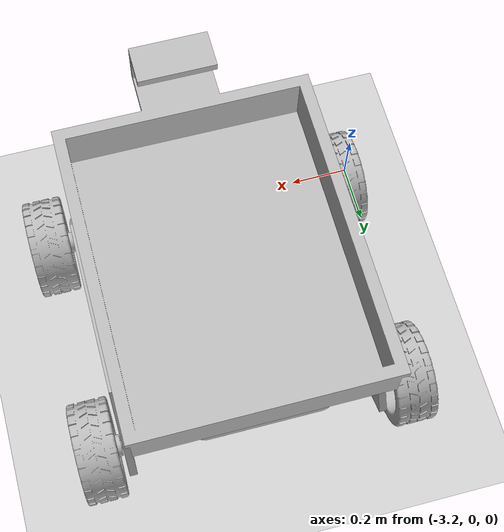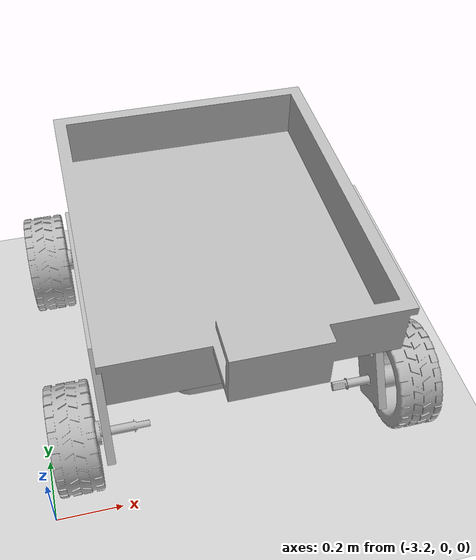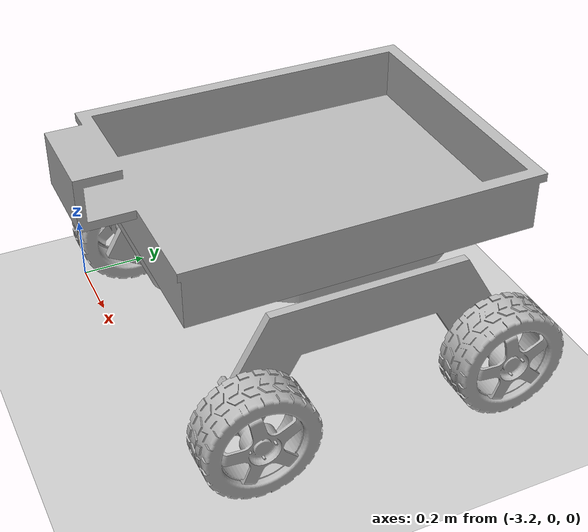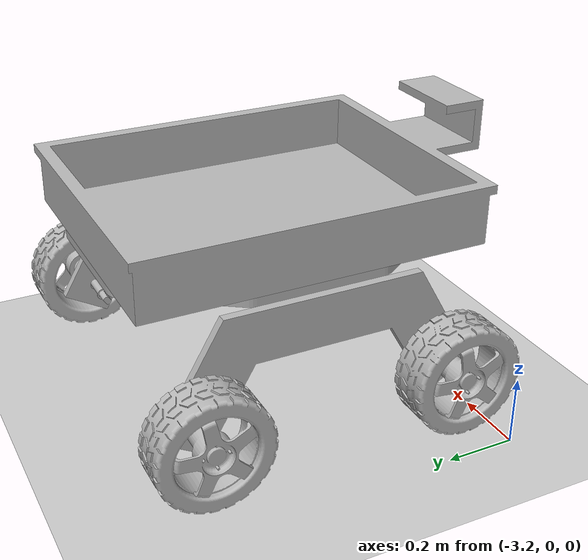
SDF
<sdf version="1.9">
 <world name="warehouse_world">
  <plugin filename="gz-sim-physics-system" name="gz::sim::systems::Physics"/>
  <plugin filename="gz-sim-user-commands-system" name="gz::sim::systems::UserCommands"/>
  <plugin filename="gz-sim-scene-broadcaster-system" name="gz::sim::systems::SceneBroadcaster"/>
  <plugin filename="gz-sim-contact-system" name="gz::sim::systems::Contact"/>
  <scene>
   <grid>false</grid>
   <origin_visual>false</origin_visual>
   <ambient>0.5 0.5 0.5 1</ambient>
   <background>0.5 0.7 1.0 1</background>
  </scene>
  <light name="warehouse_light" type="point">
   <pose>0 0 8 0 0 0</pose>
   <diffuse>0.7 0.7 0.7 1</diffuse>
   <specular>0.2 0.2 0.2 1</specular>
   <attenuation>
    <range>50</range>
    <constant>0.5</constant>
    <linear>0.01</linear>
    <quadratic>0.001</quadratic>
   </attenuation>
  </light>
  <model name="ground_plane">
   <static>true</static>
   <link name="link">
    <collision name="collision">
     <geometry><plane><normal>0 0 1</normal><size>100 100</size></plane></geometry>
    </collision>
    <visual name="visual"><geometry><plane><normal>0 0 1</normal><size>100 100</size></plane></geometry></visual>
   </link>
  </model>
  <include>
   <uri>file:///home/ishan/Documents/ros_mobile_robot/fusionSDF</uri>
   <pose>-3 0 0.5 0 0 0</pose>
  </include>
 </world>
</sdf>

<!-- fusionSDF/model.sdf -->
<sdf version="1.9">
  <model name="finalassembly_v3">

    <link name="base_link_1">
      <inertial>
        <pose>0.08000000000000008 0.09545598293362575 0.0068908634732035455 0.0 -0.0 0.0</pose>
        <mass>3.9409647200439992</mass>
        <inertia>
          <ixx>0.017709947701599185</ixx>
          <ixy>1.7694179454963432e-16</ixy>
          <ixz>-8.673617379884035e-19</ixz>
          <iyy>0.013743217946582138</iyy>
          <iyz>0.000759111480018366</iyz>
          <izz>0.0282437401639066</izz>
        </inertia>
      </inertial>

      <visual name="base_link_1__body1_visual">
        <geometry>
          <mesh>
            <scale>0.05 0.05 0.05</scale>
            <uri>meshes/base_link_1/body1_visual.obj</uri>
          </mesh>
        </geometry>
      </visual>

      <visual name="base_link_1__body2_visual">
        <geometry>
          <mesh>
            <scale>0.05 0.05 0.05</scale>
            <uri>meshes/base_link_1/body2_visual.obj</uri>
          </mesh>
        </geometry>
      </visual>

      <visual name="base_link_1__body3_visual">
        <geometry>
          <mesh>
            <scale>0.05 0.05 0.05</scale>
            <uri>meshes/base_link_1/body3_visual.obj</uri>
          </mesh>
        </geometry>
      </visual>

      <visual name="base_link_1__body4_visual">
        <geometry>
          <mesh>
            <scale>0.05 0.05 0.05</scale>
            <uri>meshes/base_link_1/body4_visual.obj</uri>
          </mesh>
        </geometry>
      </visual>

      <collision name="base_link_collision">
        <pose>0.40 0.40 0.075 0 0 0</pose>
        <geometry>
          <box>
            <size>0.80 1.20 0.40</size>
          </box>
        </geometry>
      </collision>
    </link>

    <link name="front_left_wheel_1">
      <inertial>
        <pose>0.18119913055959916 0.02650941058119064 -0.058006850665017165 0.0 -0.0 0.0</pose>
        <mass>0.23963195508574156</mass>
        <inertia>
          <ixx>0.00015999625746217466</ixx>
          <ixy>5.079204962437495e-10</ixy>
          <ixz>-4.011342529842976e-10</ixz>
          <iyy>0.00010144075867908435</iyy>
          <iyz>1.9240309589692653e-10</iyz>
          <izz>0.0001014408426342206</izz>
        </inertia>
      </inertial>

      <visual name="front_left_wheel_1__body1_visual">
        <geometry>
          <mesh>
            <scale>0.05 0.05 0.05</scale>
            <uri>meshes/front_left_wheel_1/body1_visual.obj</uri>
          </mesh>
        </geometry>
      </visual>

      <visual name="front_left_wheel_1__body2_visual">
        <geometry>
          <mesh>
            <scale>0.05 0.05 0.05</scale>
            <uri>meshes/front_left_wheel_1/body2_visual.obj</uri>
          </mesh>
        </geometry>
      </visual>

      <collision name="wheel_collision">
        <pose>0.9005 0.1325 -0.29 1.5708 0 1.5708</pose>
        <geometry>
          <cylinder>
            <radius>0.16</radius>
            <length>0.14</length>
          </cylinder>
        </geometry>
      </collision>
    </link>

    <link name="rear_left_wheel_1">
      <inertial>
        <pose>0.18119913055959913 0.17349016693742006 -0.05800685066501671 0.0 -0.0 0.0</pose>
        <mass>0.23963195508574073</mass>
        <inertia>
          <ixx>0.0001599965333883447</ixx>
          <ixy>2.5793205592206103e-10</ixy>
          <ixz>-4.0113425255061674e-10</ixz>
          <iyy>0.00010144075867908435</iyy>
          <iyz>2.7243130754778244e-10</iyz>
          <izz>0.00010144111856039313</izz>
        </inertia>
      </inertial>

      <visual name="rear_left_wheel_1__body1_visual">
        <geometry>
          <mesh>
            <scale>0.05 0.05 0.05</scale>
            <uri>meshes/rear_left_wheel_1/body1_visual.obj</uri>
          </mesh>
        </geometry>
      </visual>

      <visual name="rear_left_wheel_1__body2_visual">
        <geometry>
          <mesh>
            <scale>0.05 0.05 0.05</scale>
            <uri>meshes/rear_left_wheel_1/body2_visual.obj</uri>
          </mesh>
        </geometry>
      </visual>

      <collision name="wheel_collision">
        <pose>0.9005 0.8675 -0.29 1.5708 0 1.5708</pose>
        <geometry>
          <cylinder>
            <radius>0.16</radius>
            <length>0.14</length>
          </cylinder>
        </geometry>
      </collision>
    </link>

    <link name="front_right_wheel_1">
      <inertial>
        <pose>-0.021199138957676604 0.02650982708653022 -0.058006862365527455 0.0 -0.0 0.0</pose>
        <mass>0.23963191405046214</mass>
        <inertia>
          <ixx>0.0001599962599784674</ixx>
          <ixy>5.652733068683535e-10</ixy>
          <ixz>4.920400952998505e-10</ixz>
          <iyy>0.00010144045788691204</iyy>
          <iyz>-1.6255333477920367e-10</iyz>
          <izz>0.0001014405373198497</izz>
        </inertia>
      </inertial>

      <visual name="front_right_wheel_1__body1_visual">
        <geometry>
          <mesh>
            <scale>0.05 0.05 0.05</scale>
            <uri>meshes/front_right_wheel_1/body1_visual.obj</uri>
          </mesh>
        </geometry>
      </visual>

      <visual name="front_right_wheel_1__body2_visual">
        <geometry>
          <mesh>
            <scale>0.05 0.05 0.05</scale>
            <uri>meshes/front_right_wheel_1/body2_visual.obj</uri>
          </mesh>
        </geometry>
      </visual>

      <collision name="wheel_collision">
        <pose>-0.1005 0.1325 -0.29 1.5708 0 1.5708</pose>
        <geometry>
          <cylinder>
            <radius>0.16</radius>
            <length>0.14</length>
          </cylinder>
        </geometry>
      </collision>
    </link>

    <link name="rear_right_wheel_1">
      <inertial>
        <pose>-0.021199138957676535 0.17349058344363225 -0.05800686236552762 0.0 -0.0 0.0</pose>
        <mass>0.23963191405045922</mass>
        <inertia>
          <ixx>0.00015999653586396337</ixx>
          <ixy>5.945159233617867e-10</ixy>
          <ixz>4.920400964924729e-10</ixz>
          <iyy>0.00010144045788691063</iyy>
          <iyz>-8.253723659396028e-11</iyz>
          <izz>0.00010144081320534806</izz>
        </inertia>
      </inertial>

      <visual name="rear_right_wheel_1__body1_visual">
        <geometry>
          <mesh>
            <scale>0.05 0.05 0.05</scale>
            <uri>meshes/rear_right_wheel_1/body1_visual.obj</uri>
          </mesh>
        </geometry>
      </visual>

      <visual name="rear_right_wheel_1__body2_visual">
        <geometry>
          <mesh>
            <scale>0.05 0.05 0.05</scale>
            <uri>meshes/rear_right_wheel_1/body2_visual.obj</uri>
          </mesh>
        </geometry>
      </visual>

      <collision name="wheel_collision">
        <pose>-0.1005 0.8675 -0.29 1.5708 0 1.5708</pose>
        <geometry>
          <cylinder>
            <radius>0.16</radius>
            <length>0.14</length>
          </cylinder>
        </geometry>
      </collision>
    </link>

    <joint name="front_left_joint" type="revolute">
      <pose>0.165 0.0265 -0.058 0 0 0</pose>
      <parent>base_link_1</parent>
      <child>front_left_wheel_1</child>
      <axis>
        <xyz>1 0 0</xyz>
        <limit>
          <lower>-1000000</lower>
          <upper>1000000</upper>
        </limit>
      </axis>
    </joint>

    <joint name="rear_left_joint" type="revolute">
      <pose>0.165 0.1735 -0.058 0 0 0</pose>
      <parent>base_link_1</parent>
      <child>rear_left_wheel_1</child>
      <axis>
        <xyz>1 0 0</xyz>
        <limit>
          <lower>-1000000</lower>
          <upper>1000000</upper>
        </limit>
      </axis>
    </joint>

    <joint name="front_right_joint" type="revolute">
      <pose>-0.005 0.0265 -0.058 0 0 0</pose>
      <parent>base_link_1</parent>
      <child>front_right_wheel_1</child>
      <axis>
        <xyz>1 0 0</xyz>
        <limit>
          <lower>-1000000</lower>
          <upper>1000000</upper>
        </limit>
      </axis>
    </joint>

    <joint name="rear_right_joint" type="revolute">
      <pose>-0.005 0.1735 -0.058 0 0 0</pose>
      <parent>base_link_1</parent>
      <child>rear_right_wheel_1</child>
      <axis>
        <xyz>1 0 0</xyz>
        <limit>
          <lower>-1000000</lower>
          <upper>1000000</upper>
        </limit>
      </axis>
    </joint>

  </model>
</sdf>
